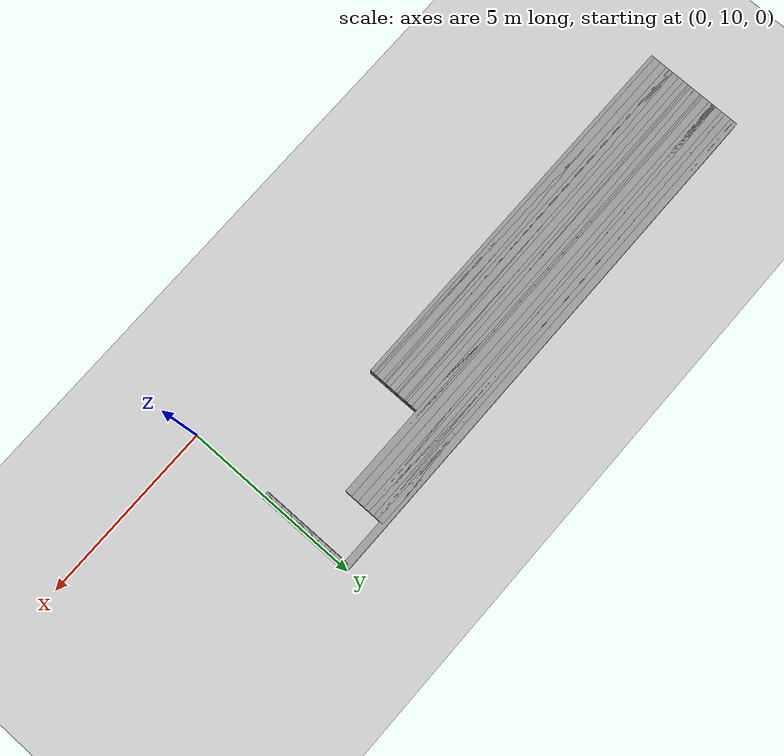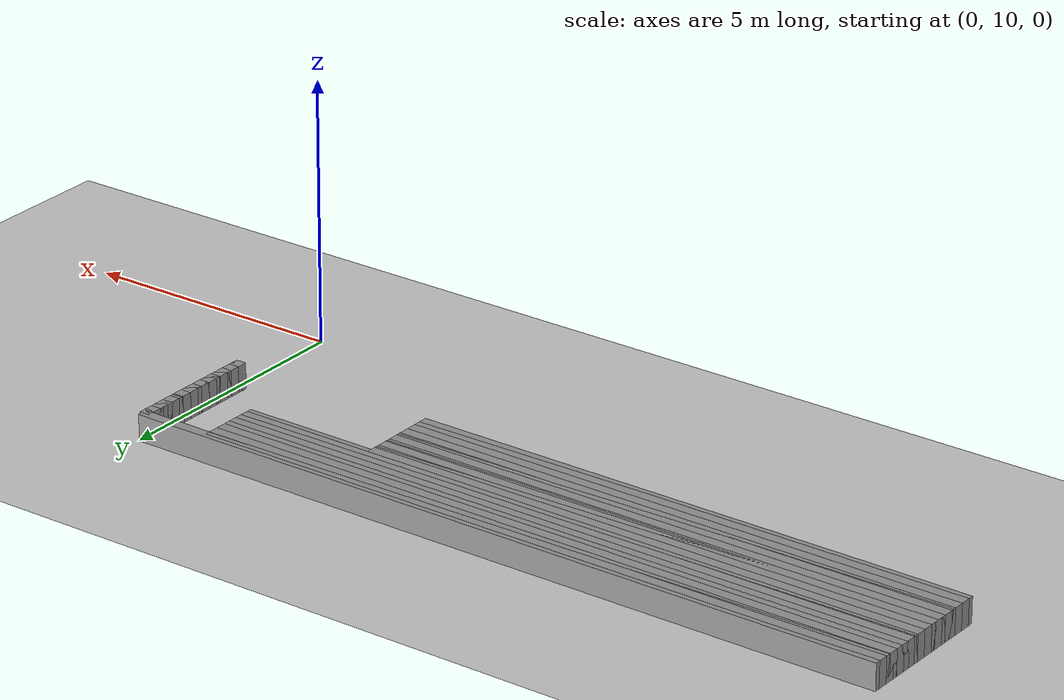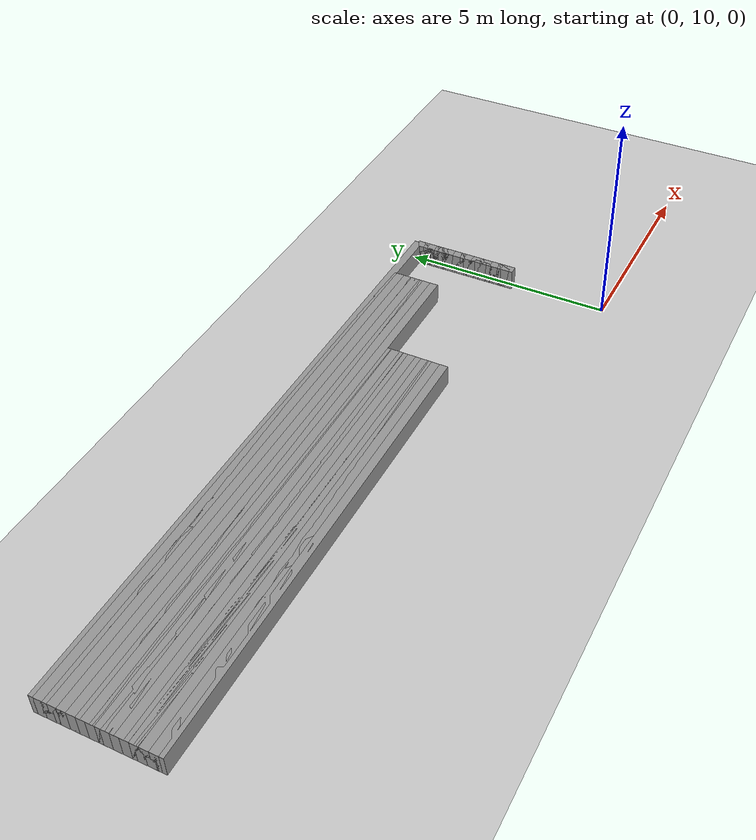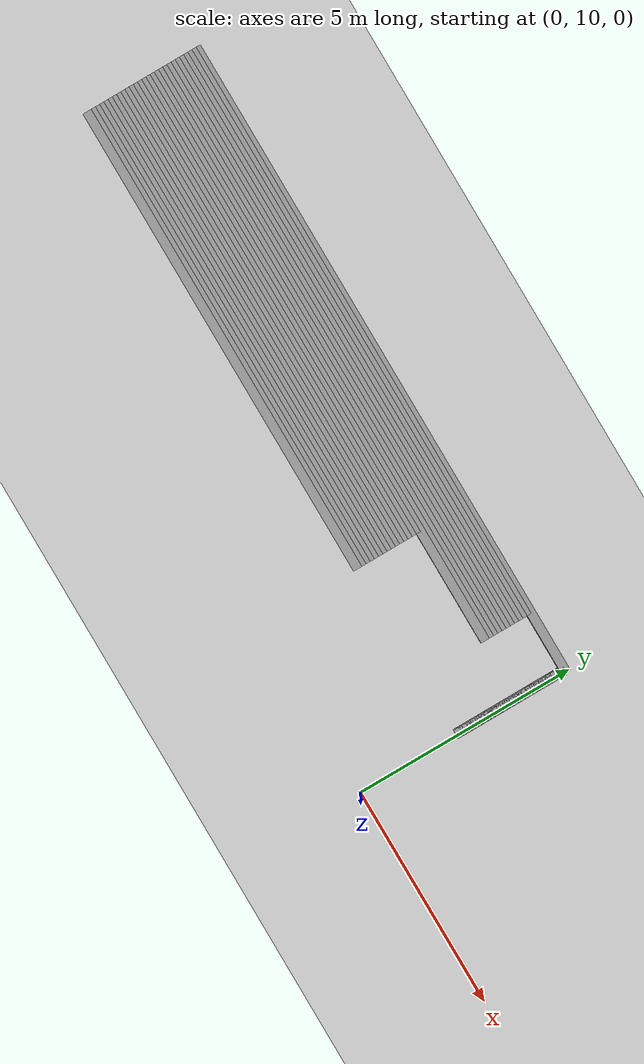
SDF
<sdf version="1.6">
 <world name="GridMap">
  <include><uri>model://sun</uri></include>
  <include><uri>model://ground_plane</uri></include>
  <model name="GridMap">
   <link name="Wall_(94.5,123.0)">
    <collision name="Wall_(94.5,123.0)_Collision">
     <geometry><box><size>10.9 0.2 0.5</size></box></geometry>
     <pose>-9.450000000000001 12.3 0.25 0 -0 0</pose>
    </collision>
    <inertial>
     <mass>0.5</mass>
     <pose>0 0.01 0 0 0 0</pose>
     <inertia><ixx>0.004</ixx><ixy>0.001</ixy><ixz>0</ixz><iyy>0.006</iyy><iyz>0</iyz><izz>0.007</izz></inertia>
    </inertial>
    <visual name="Wall_(94.5,123.0)_Visual">
     <geometry><box><size>10.9 0.2 0.5</size></box></geometry>
     <pose>-9.450000000000001 12.3 0.25 0 -0 0</pose>
     <material>
      <script><uri>file://media/materials/scripts/gazebo.material</uri><name>Gazebo/Grey</name></script>
      <ambient>1 1 1 1</ambient>
     </material>
     <meta><layer>0</layer></meta>
    </visual>
   </link>
   <link name="Wall_(0.5,124.0)">
    <collision name="Wall_(0.5,124.0)_Collision">
     <geometry><box><size>0.2 0.2 0.5</size></box></geometry>
     <pose>-0.05 12.4 0.25 0 -0 0</pose>
    </collision>
    <inertial>
     <mass>0.5</mass>
     <pose>0 0.01 0 0 0 0</pose>
     <inertia><ixx>0.004</ixx><ixy>0.001</ixy><ixz>0</ixz><iyy>0.006</iyy><iyz>0</iyz><izz>0.007</izz></inertia>
    </inertial>
    <visual name="Wall_(0.5,124.0)_Visual">
     <geometry><box><size>0.2 0.2 0.5</size></box></geometry>
     <pose>-0.05 12.4 0.25 0 -0 0</pose>
     <material>
      <script><uri>file://media/materials/scripts/gazebo.material</uri><name>Gazebo/Grey</name></script>
      <ambient>1 1 1 1</ambient>
     </material>
     <meta><layer>0</layer></meta>
    </visual>
   </link>
   <link name="Wall_(94.5,124.0)">
    <collision name="Wall_(94.5,124.0)_Collision">
     <geometry><box><size>10.9 0.2 0.5</size></box></geometry>
     <pose>-9.450000000000001 12.4 0.25 0 -0 0</pose>
    </collision>
    <inertial>
     <mass>0.5</mass>
     <pose>0 0.01 0 0 0 0</pose>
     <inertia><ixx>0.004</ixx><ixy>0.001</ixy><ixz>0</ixz><iyy>0.006</iyy><iyz>0</iyz><izz>0.007</izz></inertia>
    </inertial>
    <visual name="Wall_(94.5,124.0)_Visual">
     <geometry><box><size>10.9 0.2 0.5</size></box></geometry>
     <pose>-9.450000000000001 12.4 0.25 0 -0 0</pose>
     <material>
      <script><uri>file://media/materials/scripts/gazebo.material</uri><name>Gazebo/Grey</name></script>
      <ambient>1 1 1 1</ambient>
     </material>
     <meta><layer>0</layer></meta>
    </visual>
   </link>
   <link name="Wall_(0.5,125.0)">
    <collision name="Wall_(0.5,125.0)_Collision">
     <geometry><box><size>0.2 0.2 0.5</size></box></geometry>
     <pose>-0.05 12.5 0.25 0 -0 0</pose>
    </collision>
    <inertial>
     <mass>0.5</mass>
     <pose>0 0.01 0 0 0 0</pose>
     <inertia><ixx>0.004</ixx><ixy>0.001</ixy><ixz>0</ixz><iyy>0.006</iyy><iyz>0</iyz><izz>0.007</izz></inertia>
    </inertial>
    <visual name="Wall_(0.5,125.0)_Visual">
     <geometry><box><size>0.2 0.2 0.5</size></box></geometry>
     <pose>-0.05 12.5 0.25 0 -0 0</pose>
     <material>
      <script><uri>file://media/materials/scripts/gazebo.material</uri><name>Gazebo/Grey</name></script>
      <ambient>1 1 1 1</ambient>
     </material>
     <meta><layer>0</layer></meta>
    </visual>
   </link>
   <link name="Wall_(94.5,125.0)">
    <collision name="Wall_(94.5,125.0)_Collision">
     <geometry><box><size>10.9 0.2 0.5</size></box></geometry>
     <pose>-9.450000000000001 12.5 0.25 0 -0 0</pose>
    </collision>
    <inertial>
     <mass>0.5</mass>
     <pose>0 0.01 0 0 0 0</pose>
     <inertia><ixx>0.004</ixx><ixy>0.001</ixy><ixz>0</ixz><iyy>0.006</iyy><iyz>0</iyz><izz>0.007</izz></inertia>
    </inertial>
    <visual name="Wall_(94.5,125.0)_Visual">
     <geometry><box><size>10.9 0.2 0.5</size></box></geometry>
     <pose>-9.450000000000001 12.5 0.25 0 -0 0</pose>
     <material>
      <script><uri>file://media/materials/scripts/gazebo.material</uri><name>Gazebo/Grey</name></script>
      <ambient>1 1 1 1</ambient>
     </material>
     <meta><layer>0</layer></meta>
    </visual>
   </link>
   <link name="Wall_(0.5,126.0)">
    <collision name="Wall_(0.5,126.0)_Collision">
     <geometry><box><size>0.2 0.2 0.5</size></box></geometry>
     <pose>-0.05 12.600000000000001 0.25 0 -0 0</pose>
    </collision>
    <inertial>
     <mass>0.5</mass>
     <pose>0 0.01 0 0 0 0</pose>
     <inertia><ixx>0.004</ixx><ixy>0.001</ixy><ixz>0</ixz><iyy>0.006</iyy><iyz>0</iyz><izz>0.007</izz></inertia>
    </inertial>
    <visual name="Wall_(0.5,126.0)_Visual">
     <geometry><box><size>0.2 0.2 0.5</size></box></geometry>
     <pose>-0.05 12.600000000000001 0.25 0 -0 0</pose>
     <material>
      <script><uri>file://media/materials/scripts/gazebo.material</uri><name>Gazebo/Grey</name></script>
      <ambient>1 1 1 1</ambient>
     </material>
     <meta><layer>0</layer></meta>
    </visual>
   </link>
   <link name="Wall_(94.5,126.0)">
    <collision name="Wall_(94.5,126.0)_Collision">
     <geometry><box><size>10.9 0.2 0.5</size></box></geometry>
     <pose>-9.450000000000001 12.600000000000001 0.25 0 -0 0</pose>
    </collision>
    <inertial>
     <mass>0.5</mass>
     <pose>0 0.01 0 0 0 0</pose>
     <inertia><ixx>0.004</ixx><ixy>0.001</ixy><ixz>0</ixz><iyy>0.006</iyy><iyz>0</iyz><izz>0.007</izz></inertia>
    </inertial>
    <visual name="Wall_(94.5,126.0)_Visual">
     <geometry><box><size>10.9 0.2 0.5</size></box></geometry>
     <pose>-9.450000000000001 12.600000000000001 0.25 0 -0 0</pose>
     <material>
      <script><uri>file://media/materials/scripts/gazebo.material</uri><name>Gazebo/Grey</name></script>
      <ambient>1 1 1 1</ambient>
     </material>
     <meta><layer>0</layer></meta>
    </visual>
   </link>
   <link name="Wall_(0.5,127.0)">
    <collision name="Wall_(0.5,127.0)_Collision">
     <geometry><box><size>0.2 0.2 0.5</size></box></geometry>
     <pose>-0.05 12.700000000000001 0.25 0 -0 0</pose>
    </collision>
    <inertial>
     <mass>0.5</mass>
     <pose>0 0.01 0 0 0 0</pose>
     <inertia><ixx>0.004</ixx><ixy>0.001</ixy><ixz>0</ixz><iyy>0.006</iyy><iyz>0</iyz><izz>0.007</izz></inertia>
    </inertial>
    <visual name="Wall_(0.5,127.0)_Visual">
     <geometry><box><size>0.2 0.2 0.5</size></box></geometry>
     <pose>-0.05 12.700000000000001 0.25 0 -0 0</pose>
     <material>
      <script><uri>file://media/materials/scripts/gazebo.material</uri><name>Gazebo/Grey</name></script>
      <ambient>1 1 1 1</ambient>
     </material>
     <meta><layer>0</layer></meta>
    </visual>
   </link>
   <link name="Wall_(94.5,127.0)">
    <collision name="Wall_(94.5,127.0)_Collision">
     <geometry><box><size>10.9 0.2 0.5</size></box></geometry>
     <pose>-9.450000000000001 12.700000000000001 0.25 0 -0 0</pose>
    </collision>
    <inertial>
     <mass>0.5</mass>
     <pose>0 0.01 0 0 0 0</pose>
     <inertia><ixx>0.004</ixx><ixy>0.001</ixy><ixz>0</ixz><iyy>0.006</iyy><iyz>0</iyz><izz>0.007</izz></inertia>
    </inertial>
    <visual name="Wall_(94.5,127.0)_Visual">
     <geometry><box><size>10.9 0.2 0.5</size></box></geometry>
     <pose>-9.450000000000001 12.700000000000001 0.25 0 -0 0</pose>
     <material>
      <script><uri>file://media/materials/scripts/gazebo.material</uri><name>Gazebo/Grey</name></script>
      <ambient>1 1 1 1</ambient>
     </material>
     <meta><layer>0</layer></meta>
    </visual>
   </link>
   <link name="Wall_(0.5,128.0)">
    <collision name="Wall_(0.5,128.0)_Collision">
     <geometry><box><size>0.2 0.2 0.5</size></box></geometry>
     <pose>-0.05 12.8 0.25 0 -0 0</pose>
    </collision>
    <inertial>
     <mass>0.5</mass>
     <pose>0 0.01 0 0 0 0</pose>
     <inertia><ixx>0.004</ixx><ixy>0.001</ixy><ixz>0</ixz><iyy>0.006</iyy><iyz>0</iyz><izz>0.007</izz></inertia>
    </inertial>
    <visual name="Wall_(0.5,128.0)_Visual">
     <geometry><box><size>0.2 0.2 0.5</size></box></geometry>
     <pose>-0.05 12.8 0.25 0 -0 0</pose>
     <material>
      <script><uri>file://media/materials/scripts/gazebo.material</uri><name>Gazebo/Grey</name></script>
      <ambient>1 1 1 1</ambient>
     </material>
     <meta><layer>0</layer></meta>
    </visual>
   </link>
   <link name="Wall_(94.5,128.0)">
    <collision name="Wall_(94.5,128.0)_Collision">
     <geometry><box><size>10.9 0.2 0.5</size></box></geometry>
     <pose>-9.450000000000001 12.8 0.25 0 -0 0</pose>
    </collision>
    <inertial>
     <mass>0.5</mass>
     <pose>0 0.01 0 0 0 0</pose>
     <inertia><ixx>0.004</ixx><ixy>0.001</ixy><ixz>0</ixz><iyy>0.006</iyy><iyz>0</iyz><izz>0.007</izz></inertia>
    </inertial>
    <visual name="Wall_(94.5,128.0)_Visual">
     <geometry><box><size>10.9 0.2 0.5</size></box></geometry>
     <pose>-9.450000000000001 12.8 0.25 0 -0 0</pose>
     <material>
      <script><uri>file://media/materials/scripts/gazebo.material</uri><name>Gazebo/Grey</name></script>
      <ambient>1 1 1 1</ambient>
     </material>
     <meta><layer>0</layer></meta>
    </visual>
   </link>
   <link name="Wall_(0.5,129.0)">
    <collision name="Wall_(0.5,129.0)_Collision">
     <geometry><box><size>0.2 0.2 0.5</size></box></geometry>
     <pose>-0.05 12.9 0.25 0 -0 0</pose>
    </collision>
    <inertial>
     <mass>0.5</mass>
     <pose>0 0.01 0 0 0 0</pose>
     <inertia><ixx>0.004</ixx><ixy>0.001</ixy><ixz>0</ixz><iyy>0.006</iyy><iyz>0</iyz><izz>0.007</izz></inertia>
    </inertial>
    <visual name="Wall_(0.5,129.0)_Visual">
     <geometry><box><size>0.2 0.2 0.5</size></box></geometry>
     <pose>-0.05 12.9 0.25 0 -0 0</pose>
     <material>
      <script><uri>file://media/materials/scripts/gazebo.material</uri><name>Gazebo/Grey</name></script>
      <ambient>1 1 1 1</ambient>
     </material>
     <meta><layer>0</layer></meta>
    </visual>
   </link>
   <link name="Wall_(94.5,129.0)">
    <collision name="Wall_(94.5,129.0)_Collision">
     <geometry><box><size>10.9 0.2 0.5</size></box></geometry>
     <pose>-9.450000000000001 12.9 0.25 0 -0 0</pose>
    </collision>
    <inertial>
     <mass>0.5</mass>
     <pose>0 0.01 0 0 0 0</pose>
     <inertia><ixx>0.004</ixx><ixy>0.001</ixy><ixz>0</ixz><iyy>0.006</iyy><iyz>0</iyz><izz>0.007</izz></inertia>
    </inertial>
    <visual name="Wall_(94.5,129.0)_Visual">
     <geometry><box><size>10.9 0.2 0.5</size></box></geometry>
     <pose>-9.450000000000001 12.9 0.25 0 -0 0</pose>
     <material>
      <script><uri>file://media/materials/scripts/gazebo.material</uri><name>Gazebo/Grey</name></script>
      <ambient>1 1 1 1</ambient>
     </material>
     <meta><layer>0</layer></meta>
    </visual>
   </link>
   <link name="Wall_(0.5,130.0)">
    <collision name="Wall_(0.5,130.0)_Collision">
     <geometry><box><size>0.2 0.2 0.5</size></box></geometry>
     <pose>-0.05 13.0 0.25 0 -0 0</pose>
    </collision>
    <inertial>
     <mass>0.5</mass>
     <pose>0 0.01 0 0 0 0</pose>
     <inertia><ixx>0.004</ixx><ixy>0.001</ixy><ixz>0</ixz><iyy>0.006</iyy><iyz>0</iyz><izz>0.007</izz></inertia>
    </inertial>
    <visual name="Wall_(0.5,130.0)_Visual">
     <geometry><box><size>0.2 0.2 0.5</size></box></geometry>
     <pose>-0.05 13.0 0.25 0 -0 0</pose>
     <material>
      <script><uri>file://media/materials/scripts/gazebo.material</uri><name>Gazebo/Grey</name></script>
      <ambient>1 1 1 1</ambient>
     </material>
     <meta><layer>0</layer></meta>
    </visual>
   </link>
   <link name="Wall_(94.5,130.0)">
    <collision name="Wall_(94.5,130.0)_Collision">
     <geometry><box><size>10.9 0.2 0.5</size></box></geometry>
     <pose>-9.450000000000001 13.0 0.25 0 -0 0</pose>
    </collision>
    <inertial>
     <mass>0.5</mass>
     <pose>0 0.01 0 0 0 0</pose>
     <inertia><ixx>0.004</ixx><ixy>0.001</ixy><ixz>0</ixz><iyy>0.006</iyy><iyz>0</iyz><izz>0.007</izz></inertia>
    </inertial>
    <visual name="Wall_(94.5,130.0)_Visual">
     <geometry><box><size>10.9 0.2 0.5</size></box></geometry>
     <pose>-9.450000000000001 13.0 0.25 0 -0 0</pose>
     <material>
      <script><uri>file://media/materials/scripts/gazebo.material</uri><name>Gazebo/Grey</name></script>
      <ambient>1 1 1 1</ambient>
     </material>
     <meta><layer>0</layer></meta>
    </visual>
   </link>
   <link name="Wall_(0.5,131.0)">
    <collision name="Wall_(0.5,131.0)_Collision">
     <geometry><box><size>0.2 0.2 0.5</size></box></geometry>
     <pose>-0.05 13.100000000000001 0.25 0 -0 0</pose>
    </collision>
    <inertial>
     <mass>0.5</mass>
     <pose>0 0.01 0 0 0 0</pose>
     <inertia><ixx>0.004</ixx><ixy>0.001</ixy><ixz>0</ixz><iyy>0.006</iyy><iyz>0</iyz><izz>0.007</izz></inertia>
    </inertial>
    <visual name="Wall_(0.5,131.0)_Visual">
     <geometry><box><size>0.2 0.2 0.5</size></box></geometry>
     <pose>-0.05 13.100000000000001 0.25 0 -0 0</pose>
     <material>
      <script><uri>file://media/materials/scripts/gazebo.material</uri><name>Gazebo/Grey</name></script>
      <ambient>1 1 1 1</ambient>
     </material>
     <meta><layer>0</layer></meta>
    </visual>
   </link>
   <link name="Wall_(94.5,131.0)">
    <collision name="Wall_(94.5,131.0)_Collision">
     <geometry><box><size>10.9 0.2 0.5</size></box></geometry>
     <pose>-9.450000000000001 13.100000000000001 0.25 0 -0 0</pose>
    </collision>
    <inertial>
     <mass>0.5</mass>
     <pose>0 0.01 0 0 0 0</pose>
     <inertia><ixx>0.004</ixx><ixy>0.001</ixy><ixz>0</ixz><iyy>0.006</iyy><iyz>0</iyz><izz>0.007</izz></inertia>
    </inertial>
    <visual name="Wall_(94.5,131.0)_Visual">
     <geometry><box><size>10.9 0.2 0.5</size></box></geometry>
     <pose>-9.450000000000001 13.100000000000001 0.25 0 -0 0</pose>
     <material>
      <script><uri>file://media/materials/scripts/gazebo.material</uri><name>Gazebo/Grey</name></script>
      <ambient>1 1 1 1</ambient>
     </material>
     <meta><layer>0</layer></meta>
    </visual>
   </link>
   <link name="Wall_(0.5,132.0)">
    <collision name="Wall_(0.5,132.0)_Collision">
     <geometry><box><size>0.2 0.2 0.5</size></box></geometry>
     <pose>-0.05 13.200000000000001 0.25 0 -0 0</pose>
    </collision>
    <inertial>
     <mass>0.5</mass>
     <pose>0 0.01 0 0 0 0</pose>
     <inertia><ixx>0.004</ixx><ixy>0.001</ixy><ixz>0</ixz><iyy>0.006</iyy><iyz>0</iyz><izz>0.007</izz></inertia>
    </inertial>
    <visual name="Wall_(0.5,132.0)_Visual">
     <geometry><box><size>0.2 0.2 0.5</size></box></geometry>
     <pose>-0.05 13.200000000000001 0.25 0 -0 0</pose>
     <material>
      <script><uri>file://media/materials/scripts/gazebo.material</uri><name>Gazebo/Grey</name></script>
      <ambient>1 1 1 1</ambient>
     </material>
     <meta><layer>0</layer></meta>
    </visual>
   </link>
   <link name="Wall_(94.5,132.0)">
    <collision name="Wall_(94.5,132.0)_Collision">
     <geometry><box><size>10.9 0.2 0.5</size></box></geometry>
     <pose>-9.450000000000001 13.200000000000001 0.25 0 -0 0</pose>
    </collision>
    <inertial>
     <mass>0.5</mass>
     <pose>0 0.01 0 0 0 0</pose>
     <inertia><ixx>0.004</ixx><ixy>0.001</ixy><ixz>0</ixz><iyy>0.006</iyy><iyz>0</iyz><izz>0.007</izz></inertia>
    </inertial>
    <visual name="Wall_(94.5,132.0)_Visual">
     <geometry><box><size>10.9 0.2 0.5</size></box></geometry>
     <pose>-9.450000000000001 13.200000000000001 0.25 0 -0 0</pose>
     <material>
      <script><uri>file://media/materials/scripts/gazebo.material</uri><name>Gazebo/Grey</name></script>
      <ambient>1 1 1 1</ambient>
     </material>
     <meta><layer>0</layer></meta>
    </visual>
   </link>
   <link name="Wall_(0.5,133.0)">
    <collision name="Wall_(0.5,133.0)_Collision">
     <geometry><box><size>0.2 0.2 0.5</size></box></geometry>
     <pose>-0.05 13.3 0.25 0 -0 0</pose>
    </collision>
    <inertial>
     <mass>0.5</mass>
     <pose>0 0.01 0 0 0 0</pose>
     <inertia><ixx>0.004</ixx><ixy>0.001</ixy><ixz>0</ixz><iyy>0.006</iyy><iyz>0</iyz><izz>0.007</izz></inertia>
    </inertial>
    <visual name="Wall_(0.5,133.0)_Visual">
     <geometry><box><size>0.2 0.2 0.5</size></box></geometry>
     <pose>-0.05 13.3 0.25 0 -0 0</pose>
     <material>
      <script><uri>file://media/materials/scripts/gazebo.material</uri><name>Gazebo/Grey</name></script>
      <ambient>1 1 1 1</ambient>
     </material>
     <meta><layer>0</layer></meta>
    </visual>
   </link>
   <link name="Wall_(94.5,133.0)">
    <collision name="Wall_(94.5,133.0)_Collision">
     <geometry><box><size>10.9 0.2 0.5</size></box></geometry>
     <pose>-9.450000000000001 13.3 0.25 0 -0 0</pose>
    </collision>
    <inertial>
     <mass>0.5</mass>
     <pose>0 0.01 0 0 0 0</pose>
     <inertia><ixx>0.004</ixx><ixy>0.001</ixy><ixz>0</ixz><iyy>0.006</iyy><iyz>0</iyz><izz>0.007</izz></inertia>
    </inertial>
    <visual name="Wall_(94.5,133.0)_Visual">
     <geometry><box><size>10.9 0.2 0.5</size></box></geometry>
     <pose>-9.450000000000001 13.3 0.25 0 -0 0</pose>
     <material>
      <script><uri>file://media/materials/scripts/gazebo.material</uri><name>Gazebo/Grey</name></script>
      <ambient>1 1 1 1</ambient>
     </material>
     <meta><layer>0</layer></meta>
    </visual>
   </link>
   <link name="Wall_(0.5,134.0)">
    <collision name="Wall_(0.5,134.0)_Collision">
     <geometry><box><size>0.2 0.2 0.5</size></box></geometry>
     <pose>-0.05 13.4 0.25 0 -0 0</pose>
    </collision>
    <inertial>
     <mass>0.5</mass>
     <pose>0 0.01 0 0 0 0</pose>
     <inertia><ixx>0.004</ixx><ixy>0.001</ixy><ixz>0</ixz><iyy>0.006</iyy><iyz>0</iyz><izz>0.007</izz></inertia>
    </inertial>
    <visual name="Wall_(0.5,134.0)_Visual">
     <geometry><box><size>0.2 0.2 0.5</size></box></geometry>
     <pose>-0.05 13.4 0.25 0 -0 0</pose>
     <material>
      <script><uri>file://media/materials/scripts/gazebo.material</uri><name>Gazebo/Grey</name></script>
      <ambient>1 1 1 1</ambient>
     </material>
     <meta><layer>0</layer></meta>
    </visual>
   </link>
   <link name="Wall_(94.5,134.0)">
    <collision name="Wall_(94.5,134.0)_Collision">
     <geometry><box><size>10.9 0.2 0.5</size></box></geometry>
     <pose>-9.450000000000001 13.4 0.25 0 -0 0</pose>
    </collision>
    <inertial>
     <mass>0.5</mass>
     <pose>0 0.01 0 0 0 0</pose>
     <inertia><ixx>0.004</ixx><ixy>0.001</ixy><ixz>0</ixz><iyy>0.006</iyy><iyz>0</iyz><izz>0.007</izz></inertia>
    </inertial>
    <visual name="Wall_(94.5,134.0)_Visual">
     <geometry><box><size>10.9 0.2 0.5</size></box></geometry>
     <pose>-9.450000000000001 13.4 0.25 0 -0 0</pose>
     <material>
      <script><uri>file://media/materials/scripts/gazebo.material</uri><name>Gazebo/Grey</name></script>
      <ambient>1 1 1 1</ambient>
     </material>
     <meta><layer>0</layer></meta>
    </visual>
   </link>
   <link name="Wall_(0.5,135.0)">
    <collision name="Wall_(0.5,135.0)_Collision">
     <geometry><box><size>0.2 0.2 0.5</size></box></geometry>
     <pose>-0.05 13.5 0.25 0 -0 0</pose>
    </collision>
    <inertial>
     <mass>0.5</mass>
     <pose>0 0.01 0 0 0 0</pose>
     <inertia><ixx>0.004</ixx><ixy>0.001</ixy><ixz>0</ixz><iyy>0.006</iyy><iyz>0</iyz><izz>0.007</izz></inertia>
    </inertial>
    <visual name="Wall_(0.5,135.0)_Visual">
     <geometry><box><size>0.2 0.2 0.5</size></box></geometry>
     <pose>-0.05 13.5 0.25 0 -0 0</pose>
     <material>
      <script><uri>file://media/materials/scripts/gazebo.material</uri><name>Gazebo/Grey</name></script>
      <ambient>1 1 1 1</ambient>
     </material>
     <meta><layer>0</layer></meta>
    </visual>
   </link>
   <link name="Wall_(94.5,135.0)">
    <collision name="Wall_(94.5,135.0)_Collision">
     <geometry><box><size>10.9 0.2 0.5</size></box></geometry>
     <pose>-9.450000000000001 13.5 0.25 0 -0 0</pose>
    </collision>
    <inertial>
     <mass>0.5</mass>
     <pose>0 0.01 0 0 0 0</pose>
     <inertia><ixx>0.004</ixx><ixy>0.001</ixy><ixz>0</ixz><iyy>0.006</iyy><iyz>0</iyz><izz>0.007</izz></inertia>
    </inertial>
    <visual name="Wall_(94.5,135.0)_Visual">
     <geometry><box><size>10.9 0.2 0.5</size></box></geometry>
     <pose>-9.450000000000001 13.5 0.25 0 -0 0</pose>
     <material>
      <script><uri>file://media/materials/scripts/gazebo.material</uri><name>Gazebo/Grey</name></script>
      <ambient>1 1 1 1</ambient>
     </material>
     <meta><layer>0</layer></meta>
    </visual>
   </link>
   <link name="Wall_(0.5,136.0)">
    <collision name="Wall_(0.5,136.0)_Collision">
     <geometry><box><size>0.2 0.2 0.5</size></box></geometry>
     <pose>-0.05 13.600000000000001 0.25 0 -0 0</pose>
    </collision>
    <inertial>
     <mass>0.5</mass>
     <pose>0 0.01 0 0 0 0</pose>
     <inertia><ixx>0.004</ixx><ixy>0.001</ixy><ixz>0</ixz><iyy>0.006</iyy><iyz>0</iyz><izz>0.007</izz></inertia>
    </inertial>
    <visual name="Wall_(0.5,136.0)_Visual">
     <geometry><box><size>0.2 0.2 0.5</size></box></geometry>
     <pose>-0.05 13.600000000000001 0.25 0 -0 0</pose>
     <material>
      <script><uri>file://media/materials/scripts/gazebo.material</uri><name>Gazebo/Grey</name></script>
      <ambient>1 1 1 1</ambient>
     </material>
     <meta><layer>0</layer></meta>
    </visual>
   </link>
   <link name="Wall_(94.5,136.0)">
    <collision name="Wall_(94.5,136.0)_Collision">
     <geometry><box><size>10.9 0.2 0.5</size></box></geometry>
     <pose>-9.450000000000001 13.600000000000001 0.25 0 -0 0</pose>
    </collision>
    <inertial>
     <mass>0.5</mass>
     <pose>0 0.01 0 0 0 0</pose>
     <inertia><ixx>0.004</ixx><ixy>0.001</ixy><ixz>0</ixz><iyy>0.006</iyy><iyz>0</iyz><izz>0.007</izz></inertia>
    </inertial>
    <visual name="Wall_(94.5,136.0)_Visual">
     <geometry><box><size>10.9 0.2 0.5</size></box></geometry>
     <pose>-9.450000000000001 13.600000000000001 0.25 0 -0 0</pose>
     <material>
      <script><uri>file://media/materials/scripts/gazebo.material</uri><name>Gazebo/Grey</name></script>
      <ambient>1 1 1 1</ambient>
     </material>
     <meta><layer>0</layer></meta>
    </visual>
   </link>
   <link name="Wall_(0.5,137.0)">
    <collision name="Wall_(0.5,137.0)_Collision">
     <geometry><box><size>0.2 0.2 0.5</size></box></geometry>
     <pose>-0.05 13.700000000000001 0.25 0 -0 0</pose>
    </collision>
    <inertial>
     <mass>0.5</mass>
     <pose>0 0.01 0 0 0 0</pose>
     <inertia><ixx>0.004</ixx><ixy>0.001</ixy><ixz>0</ixz><iyy>0.006</iyy><iyz>0</iyz><izz>0.007</izz></inertia>
    </inertial>
    <visual name="Wall_(0.5,137.0)_Visual">
     <geometry><box><size>0.2 0.2 0.5</size></box></geometry>
     <pose>-0.05 13.700000000000001 0.25 0 -0 0</pose>
     <material>
      <script><uri>file://media/materials/scripts/gazebo.material</uri><name>Gazebo/Grey</name></script>
      <ambient>1 1 1 1</ambient>
     </material>
     <meta><layer>0</layer></meta>
    </visual>
   </link>
   <link name="Wall_(94.5,137.0)">
    <collision name="Wall_(94.5,137.0)_Collision">
     <geometry><box><size>10.9 0.2 0.5</size></box></geometry>
     <pose>-9.450000000000001 13.700000000000001 0.25 0 -0 0</pose>
    </collision>
    <inertial>
     <mass>0.5</mass>
     <pose>0 0.01 0 0 0 0</pose>
     <inertia><ixx>0.004</ixx><ixy>0.001</ixy><ixz>0</ixz><iyy>0.006</iyy><iyz>0</iyz><izz>0.007</izz></inertia>
    </inertial>
    <visual name="Wall_(94.5,137.0)_Visual">
     <geometry><box><size>10.9 0.2 0.5</size></box></geometry>
     <pose>-9.450000000000001 13.700000000000001 0.25 0 -0 0</pose>
     <material>
      <script><uri>file://media/materials/scripts/gazebo.material</uri><name>Gazebo/Grey</name></script>
      <ambient>1 1 1 1</ambient>
     </material>
     <meta><layer>0</layer></meta>
    </visual>
   </link>
   <link name="Wall_(0.5,138.0)">
    <collision name="Wall_(0.5,138.0)_Collision">
     <geometry><box><size>0.2 0.2 0.5</size></box></geometry>
     <pose>-0.05 13.8 0.25 0 -0 0</pose>
    </collision>
    <inertial>
     <mass>0.5</mass>
     <pose>0 0.01 0 0 0 0</pose>
     <inertia><ixx>0.004</ixx><ixy>0.001</ixy><ixz>0</ixz><iyy>0.006</iyy><iyz>0</iyz><izz>0.007</izz></inertia>
    </inertial>
    <visual name="Wall_(0.5,138.0)_Visual">
     <geometry><box><size>0.2 0.2 0.5</size></box></geometry>
     <pose>-0.05 13.8 0.25 0 -0 0</pose>
     <material>
      <script><uri>file://media/materials/scripts/gazebo.material</uri><name>Gazebo/Grey</name></script>
      <ambient>1 1 1 1</ambient>
     </material>
     <meta><layer>0</layer></meta>
    </visual>
   </link>
   <link name="Wall_(81.5,138.0)">
    <collision name="Wall_(81.5,138.0)_Collision">
     <geometry><box><size>13.5 0.2 0.5</size></box></geometry>
     <pose>-8.15 13.8 0.25 0 -0 0</pose>
    </collision>
    <inertial>
     <mass>0.5</mass>
     <pose>0 0.01 0 0 0 0</pose>
     <inertia><ixx>0.004</ixx><ixy>0.001</ixy><ixz>0</ixz><iyy>0.006</iyy><iyz>0</iyz><izz>0.007</izz></inertia>
    </inertial>
    <visual name="Wall_(81.5,138.0)_Visual">
     <geometry><box><size>13.5 0.2 0.5</size></box></geometry>
     <pose>-8.15 13.8 0.25 0 -0 0</pose>
     <material>
      <script><uri>file://media/materials/scripts/gazebo.material</uri><name>Gazebo/Grey</name></script>
      <ambient>1 1 1 1</ambient>
     </material>
     <meta><layer>0</layer></meta>
    </visual>
   </link>
   <link name="Wall_(0.5,139.0)">
    <collision name="Wall_(0.5,139.0)_Collision">
     <geometry><box><size>0.2 0.2 0.5</size></box></geometry>
     <pose>-0.05 13.9 0.25 0 -0 0</pose>
    </collision>
    <inertial>
     <mass>0.5</mass>
     <pose>0 0.01 0 0 0 0</pose>
     <inertia><ixx>0.004</ixx><ixy>0.001</ixy><ixz>0</ixz><iyy>0.006</iyy><iyz>0</iyz><izz>0.007</izz></inertia>
    </inertial>
    <visual name="Wall_(0.5,139.0)_Visual">
     <geometry><box><size>0.2 0.2 0.5</size></box></geometry>
     <pose>-0.05 13.9 0.25 0 -0 0</pose>
     <material>
      <script><uri>file://media/materials/scripts/gazebo.material</uri><name>Gazebo/Grey</name></script>
      <ambient>1 1 1 1</ambient>
     </material>
     <meta><layer>0</layer></meta>
    </visual>
   </link>
   <link name="Wall_(81.5,139.0)">
    <collision name="Wall_(81.5,139.0)_Collision">
     <geometry><box><size>13.5 0.2 0.5</size></box></geometry>
     <pose>-8.15 13.9 0.25 0 -0 0</pose>
    </collision>
    <inertial>
     <mass>0.5</mass>
     <pose>0 0.01 0 0 0 0</pose>
     <inertia><ixx>0.004</ixx><ixy>0.001</ixy><ixz>0</ixz><iyy>0.006</iyy><iyz>0</iyz><izz>0.007</izz></inertia>
    </inertial>
    <visual name="Wall_(81.5,139.0)_Visual">
     <geometry><box><size>13.5 0.2 0.5</size></box></geometry>
     <pose>-8.15 13.9 0.25 0 -0 0</pose>
     <material>
      <script><uri>file://media/materials/scripts/gazebo.material</uri><name>Gazebo/Grey</name></script>
      <ambient>1 1 1 1</ambient>
     </material>
     <meta><layer>0</layer></meta>
    </visual>
   </link>
   <link name="Wall_(0.5,140.0)">
    <collision name="Wall_(0.5,140.0)_Collision">
     <geometry><box><size>0.2 0.2 0.5</size></box></geometry>
     <pose>-0.05 14.0 0.25 0 -0 0</pose>
    </collision>
    <inertial>
     <mass>0.5</mass>
     <pose>0 0.01 0 0 0 0</pose>
     <inertia><ixx>0.004</ixx><ixy>0.001</ixy><ixz>0</ixz><iyy>0.006</iyy><iyz>0</iyz><izz>0.007</izz></inertia>
    </inertial>
    <visual name="Wall_(0.5,140.0)_Visual">
     <geometry><box><size>0.2 0.2 0.5</size></box></geometry>
     <pose>-0.05 14.0 0.25 0 -0 0</pose>
     <material>
      <script><uri>file://media/materials/scripts/gazebo.material</uri><name>Gazebo/Grey</name></script>
      <ambient>1 1 1 1</ambient>
     </material>
     <meta><layer>0</layer></meta>
    </visual>
   </link>
   <link name="Wall_(81.5,140.0)">
    <collision name="Wall_(81.5,140.0)_Collision">
     <geometry><box><size>13.5 0.2 0.5</size></box></geometry>
     <pose>-8.15 14.0 0.25 0 -0 0</pose>
    </collision>
    <inertial>
     <mass>0.5</mass>
     <pose>0 0.01 0 0 0 0</pose>
     <inertia><ixx>0.004</ixx><ixy>0.001</ixy><ixz>0</ixz><iyy>0.006</iyy><iyz>0</iyz><izz>0.007</izz></inertia>
    </inertial>
    <visual name="Wall_(81.5,140.0)_Visual">
     <geometry><box><size>13.5 0.2 0.5</size></box></geometry>
     <pose>-8.15 14.0 0.25 0 -0 0</pose>
     <material>
      <script><uri>file://media/materials/scripts/gazebo.material</uri><name>Gazebo/Grey</name></script>
      <ambient>1 1 1 1</ambient>
     </material>
     <meta><layer>0</layer></meta>
    </visual>
   </link>
   <link name="Wall_(0.5,141.0)">
    <collision name="Wall_(0.5,141.0)_Collision">
     <geometry><box><size>0.2 0.2 0.5</size></box></geometry>
     <pose>-0.05 14.100000000000001 0.25 0 -0 0</pose>
    </collision>
    <inertial>
     <mass>0.5</mass>
     <pose>0 0.01 0 0 0 0</pose>
     <inertia><ixx>0.004</ixx><ixy>0.001</ixy><ixz>0</ixz><iyy>0.006</iyy><iyz>0</iyz><izz>0.007</izz></inertia>
    </inertial>
    <visual name="Wall_(0.5,141.0)_Visual">
     <geometry><box><size>0.2 0.2 0.5</size></box></geometry>
     <pose>-0.05 14.100000000000001 0.25 0 -0 0</pose>
     <material>
      <script><uri>file://media/materials/scripts/gazebo.material</uri><name>Gazebo/Grey</name></script>
      <ambient>1 1 1 1</ambient>
     </material>
     <meta><layer>0</layer></meta>
    </visual>
   </link>
   <link name="Wall_(81.5,141.0)">
    <collision name="Wall_(81.5,141.0)_Collision">
     <geometry><box><size>13.5 0.2 0.5</size></box></geometry>
     <pose>-8.15 14.100000000000001 0.25 0 -0 0</pose>
    </collision>
    <inertial>
     <mass>0.5</mass>
     <pose>0 0.01 0 0 0 0</pose>
     <inertia><ixx>0.004</ixx><ixy>0.001</ixy><ixz>0</ixz><iyy>0.006</iyy><iyz>0</iyz><izz>0.007</izz></inertia>
    </inertial>
    <visual name="Wall_(81.5,141.0)_Visual">
     <geometry><box><size>13.5 0.2 0.5</size></box></geometry>
     <pose>-8.15 14.100000000000001 0.25 0 -0 0</pose>
     <material>
      <script><uri>file://media/materials/scripts/gazebo.material</uri><name>Gazebo/Grey</name></script>
      <ambient>1 1 1 1</ambient>
     </material>
     <meta><layer>0</layer></meta>
    </visual>
   </link>
   <link name="Wall_(0.5,142.0)">
    <collision name="Wall_(0.5,142.0)_Collision">
     <geometry><box><size>0.2 0.2 0.5</size></box></geometry>
     <pose>-0.05 14.200000000000001 0.25 0 -0 0</pose>
    </collision>
    <inertial>
     <mass>0.5</mass>
     <pose>0 0.01 0 0 0 0</pose>
     <inertia><ixx>0.004</ixx><ixy>0.001</ixy><ixz>0</ixz><iyy>0.006</iyy><iyz>0</iyz><izz>0.007</izz></inertia>
    </inertial>
    <visual name="Wall_(0.5,142.0)_Visual">
     <geometry><box><size>0.2 0.2 0.5</size></box></geometry>
     <pose>-0.05 14.200000000000001 0.25 0 -0 0</pose>
     <material>
      <script><uri>file://media/materials/scripts/gazebo.material</uri><name>Gazebo/Grey</name></script>
      <ambient>1 1 1 1</ambient>
     </material>
     <meta><layer>0</layer></meta>
    </visual>
   </link>
   <link name="Wall_(81.5,142.0)">
    <collision name="Wall_(81.5,142.0)_Collision">
     <geometry><box><size>13.5 0.2 0.5</size></box></geometry>
     <pose>-8.15 14.200000000000001 0.25 0 -0 0</pose>
    </collision>
    <inertial>
     <mass>0.5</mass>
     <pose>0 0.01 0 0 0 0</pose>
     <inertia><ixx>0.004</ixx><ixy>0.001</ixy><ixz>0</ixz><iyy>0.006</iyy><iyz>0</iyz><izz>0.007</izz></inertia>
    </inertial>
    <visual name="Wall_(81.5,142.0)_Visual">
     <geometry><box><size>13.5 0.2 0.5</size></box></geometry>
     <pose>-8.15 14.200000000000001 0.25 0 -0 0</pose>
     <material>
      <script><uri>file://media/materials/scripts/gazebo.material</uri><name>Gazebo/Grey</name></script>
      <ambient>1 1 1 1</ambient>
     </material>
     <meta><layer>0</layer></meta>
    </visual>
   </link>
   <link name="Wall_(0.5,143.0)">
    <collision name="Wall_(0.5,143.0)_Collision">
     <geometry><box><size>0.2 0.2 0.5</size></box></geometry>
     <pose>-0.05 14.3 0.25 0 -0 0</pose>
    </collision>
    <inertial>
     <mass>0.5</mass>
     <pose>0 0.01 0 0 0 0</pose>
     <inertia><ixx>0.004</ixx><ixy>0.001</ixy><ixz>0</ixz><iyy>0.006</iyy><iyz>0</iyz><izz>0.007</izz></inertia>
    </inertial>
    <visual name="Wall_(0.5,143.0)_Visual">
     <geometry><box><size>0.2 0.2 0.5</size></box></geometry>
     <pose>-0.05 14.3 0.25 0 -0 0</pose>
     <material>
      <script><uri>file://media/materials/scripts/gazebo.material</uri><name>Gazebo/Grey</name></script>
      <ambient>1 1 1 1</ambient>
     </material>
     <meta><layer>0</layer></meta>
    </visual>
   </link>
   <link name="Wall_(81.5,143.0)">
    <collision name="Wall_(81.5,143.0)_Collision">
     <geometry><box><size>13.5 0.2 0.5</size></box></geometry>
     <pose>-8.15 14.3 0.25 0 -0 0</pose>
    </collision>
    <inertial>
     <mass>0.5</mass>
     <pose>0 0.01 0 0 0 0</pose>
     <inertia><ixx>0.004</ixx><ixy>0.001</ixy><ixz>0</ixz><iyy>0.006</iyy><iyz>0</iyz><izz>0.007</izz></inertia>
    </inertial>
    <visual name="Wall_(81.5,143.0)_Visual">
     <geometry><box><size>13.5 0.2 0.5</size></box></geometry>
     <pose>-8.15 14.3 0.25 0 -0 0</pose>
     <material>
      <script><uri>file://media/materials/scripts/gazebo.material</uri><name>Gazebo/Grey</name></script>
      <ambient>1 1 1 1</ambient>
     </material>
     <meta><layer>0</layer></meta>
    </visual>
   </link>
   <link name="Wall_(0.5,144.0)">
    <collision name="Wall_(0.5,144.0)_Collision">
     <geometry><box><size>0.2 0.2 0.5</size></box></geometry>
     <pose>-0.05 14.4 0.25 0 -0 0</pose>
    </collision>
    <inertial>
     <mass>0.5</mass>
     <pose>0 0.01 0 0 0 0</pose>
     <inertia><ixx>0.004</ixx><ixy>0.001</ixy><ixz>0</ixz><iyy>0.006</iyy><iyz>0</iyz><izz>0.007</izz></inertia>
    </inertial>
    <visual name="Wall_(0.5,144.0)_Visual">
     <geometry><box><size>0.2 0.2 0.5</size></box></geometry>
     <pose>-0.05 14.4 0.25 0 -0 0</pose>
     <material>
      <script><uri>file://media/materials/scripts/gazebo.material</uri><name>Gazebo/Grey</name></script>
      <ambient>1 1 1 1</ambient>
     </material>
     <meta><layer>0</layer></meta>
    </visual>
   </link>
   <link name="Wall_(81.5,144.0)">
    <collision name="Wall_(81.5,144.0)_Collision">
     <geometry><box><size>13.5 0.2 0.5</size></box></geometry>
     <pose>-8.15 14.4 0.25 0 -0 0</pose>
    </collision>
    <inertial>
     <mass>0.5</mass>
     <pose>0 0.01 0 0 0 0</pose>
     <inertia><ixx>0.004</ixx><ixy>0.001</ixy><ixz>0</ixz><iyy>0.006</iyy><iyz>0</iyz><izz>0.007</izz></inertia>
    </inertial>
    <visual name="Wall_(81.5,144.0)_Visual">
     <geometry><box><size>13.5 0.2 0.5</size></box></geometry>
     <pose>-8.15 14.4 0.25 0 -0 0</pose>
     <material>
      <script><uri>file://media/materials/scripts/gazebo.material</uri><name>Gazebo/Grey</name></script>
      <ambient>1 1 1 1</ambient>
     </material>
     <meta><layer>0</layer></meta>
    </visual>
   </link>
   <link name="Wall_(0.5,145.0)">
    <collision name="Wall_(0.5,145.0)_Collision">
     <geometry><box><size>0.2 0.2 0.5</size></box></geometry>
     <pose>-0.05 14.5 0.25 0 -0 0</pose>
    </collision>
    <inertial>
     <mass>0.5</mass>
     <pose>0 0.01 0 0 0 0</pose>
     <inertia><ixx>0.004</ixx><ixy>0.001</ixy><ixz>0</ixz><iyy>0.006</iyy><iyz>0</iyz><izz>0.007</izz></inertia>
    </inertial>
    <visual name="Wall_(0.5,145.0)_Visual">
     <geometry><box><size>0.2 0.2 0.5</size></box></geometry>
     <pose>-0.05 14.5 0.25 0 -0 0</pose>
     <material>
      <script><uri>file://media/materials/scripts/gazebo.material</uri><name>Gazebo/Grey</name></script>
      <ambient>1 1 1 1</ambient>
     </material>
     <meta><layer>0</layer></meta>
    </visual>
   </link>
   <link name="Wall_(81.5,145.0)">
    <collision name="Wall_(81.5,145.0)_Collision">
     <geometry><box><size>13.5 0.2 0.5</size></box></geometry>
     <pose>-8.15 14.5 0.25 0 -0 0</pose>
    </collision>
    <inertial>
     <mass>0.5</mass>
     <pose>0 0.01 0 0 0 0</pose>
     <inertia><ixx>0.004</ixx><ixy>0.001</ixy><ixz>0</ixz><iyy>0.006</iyy><iyz>0</iyz><izz>0.007</izz></inertia>
    </inertial>
    <visual name="Wall_(81.5,145.0)_Visual">
     <geometry><box><size>13.5 0.2 0.5</size></box></geometry>
     <pose>-8.15 14.5 0.25 0 -0 0</pose>
     <material>
      <script><uri>file://media/materials/scripts/gazebo.material</uri><name>Gazebo/Grey</name></script>
      <ambient>1 1 1 1</ambient>
     </material>
     <meta><layer>0</layer></meta>
    </visual>
   </link>
   <link name="Wall_(0.5,146.0)">
    <collision name="Wall_(0.5,146.0)_Collision">
     <geometry><box><size>0.2 0.2 0.5</size></box></geometry>
     <pose>-0.05 14.600000000000001 0.25 0 -0 0</pose>
    </collision>
    <inertial>
     <mass>0.5</mass>
     <pose>0 0.01 0 0 0 0</pose>
     <inertia><ixx>0.004</ixx><ixy>0.001</ixy><ixz>0</ixz><iyy>0.006</iyy><iyz>0</iyz><izz>0.007</izz></inertia>
    </inertial>
    <visual name="Wall_(0.5,146.0)_Visual">
     <geometry><box><size>0.2 0.2 0.5</size></box></geometry>
     <pose>-0.05 14.600000000000001 0.25 0 -0 0</pose>
     <material>
      <script><uri>file://media/materials/scripts/gazebo.material</uri><name>Gazebo/Grey</name></script>
      <ambient>1 1 1 1</ambient>
     </material>
     <meta><layer>0</layer></meta>
    </visual>
   </link>
   <link name="Wall_(81.5,146.0)">
    <collision name="Wall_(81.5,146.0)_Collision">
     <geometry><box><size>13.5 0.2 0.5</size></box></geometry>
     <pose>-8.15 14.600000000000001 0.25 0 -0 0</pose>
    </collision>
    <inertial>
     <mass>0.5</mass>
     <pose>0 0.01 0 0 0 0</pose>
     <inertia><ixx>0.004</ixx><ixy>0.001</ixy><ixz>0</ixz><iyy>0.006</iyy><iyz>0</iyz><izz>0.007</izz></inertia>
    </inertial>
    <visual name="Wall_(81.5,146.0)_Visual">
     <geometry><box><size>13.5 0.2 0.5</size></box></geometry>
     <pose>-8.15 14.600000000000001 0.25 0 -0 0</pose>
     <material>
      <script><uri>file://media/materials/scripts/gazebo.material</uri><name>Gazebo/Grey</name></script>
      <ambient>1 1 1 1</ambient>
     </material>
     <meta><layer>0</layer></meta>
    </visual>
   </link>
   <link name="Wall_(0.5,147.0)">
    <collision name="Wall_(0.5,147.0)_Collision">
     <geometry><box><size>0.2 0.2 0.5</size></box></geometry>
     <pose>-0.05 14.700000000000001 0.25 0 -0 0</pose>
    </collision>
    <inertial>
     <mass>0.5</mass>
     <pose>0 0.01 0 0 0 0</pose>
     <inertia><ixx>0.004</ixx><ixy>0.001</ixy><ixz>0</ixz><iyy>0.006</iyy><iyz>0</iyz><izz>0.007</izz></inertia>
    </inertial>
    <visual name="Wall_(0.5,147.0)_Visual">
     <geometry><box><size>0.2 0.2 0.5</size></box></geometry>
     <pose>-0.05 14.700000000000001 0.25 0 -0 0</pose>
     <material>
      <script><uri>file://media/materials/scripts/gazebo.material</uri><name>Gazebo/Grey</name></script>
      <ambient>1 1 1 1</ambient>
     </material>
     <meta><layer>0</layer></meta>
    </visual>
   </link>
   <link name="Wall_(81.5,147.0)">
    <collision name="Wall_(81.5,147.0)_Collision">
     <geometry><box><size>13.5 0.2 0.5</size></box></geometry>
     <pose>-8.15 14.700000000000001 0.25 0 -0 0</pose>
    </collision>
    <inertial>
     <mass>0.5</mass>
     <pose>0 0.01 0 0 0 0</pose>
     <inertia><ixx>0.004</ixx><ixy>0.001</ixy><ixz>0</ixz><iyy>0.006</iyy><iyz>0</iyz><izz>0.007</izz></inertia>
    </inertial>
    <visual name="Wall_(81.5,147.0)_Visual">
     <geometry><box><size>13.5 0.2 0.5</size></box></geometry>
     <pose>-8.15 14.700000000000001 0.25 0 -0 0</pose>
     <material>
      <script><uri>file://media/materials/scripts/gazebo.material</uri><name>Gazebo/Grey</name></script>
      <ambient>1 1 1 1</ambient>
     </material>
     <meta><layer>0</layer></meta>
    </visual>
   </link>
   <link name="Wall_(0.5,148.0)">
    <collision name="Wall_(0.5,148.0)_Collision">
     <geometry><box><size>0.2 0.2 0.5</size></box></geometry>
     <pose>-0.05 14.8 0.25 0 -0 0</pose>
    </collision>
    <inertial>
     <mass>0.5</mass>
     <pose>0 0.01 0 0 0 0</pose>
     <inertia><ixx>0.004</ixx><ixy>0.001</ixy><ixz>0</ixz><iyy>0.006</iyy><iyz>0</iyz><izz>0.007</izz></inertia>
    </inertial>
    <visual name="Wall_(0.5,148.0)_Visual">
     <geometry><box><size>0.2 0.2 0.5</size></box></geometry>
     <pose>-0.05 14.8 0.25 0 -0 0</pose>
     <material>
      <script><uri>file://media/materials/scripts/gazebo.material</uri><name>Gazebo/Grey</name></script>
      <ambient>1 1 1 1</ambient>
     </material>
     <meta><layer>0</layer></meta>
    </visual>
   </link>
   <link name="Wall_(81.5,148.0)">
    <collision name="Wall_(81.5,148.0)_Collision">
     <geometry><box><size>13.5 0.2 0.5</size></box></geometry>
     <pose>-8.15 14.8 0.25 0 -0 0</pose>
    </collision>
    <inertial>
     <mass>0.5</mass>
     <pose>0 0.01 0 0 0 0</pose>
     <inertia><ixx>0.004</ixx><ixy>0.001</ixy><ixz>0</ixz><iyy>0.006</iyy><iyz>0</iyz><izz>0.007</izz></inertia>
    </inertial>
    <visual name="Wall_(81.5,148.0)_Visual">
     <geometry><box><size>13.5 0.2 0.5</size></box></geometry>
     <pose>-8.15 14.8 0.25 0 -0 0</pose>
     <material>
      <script><uri>file://media/materials/scripts/gazebo.material</uri><name>Gazebo/Grey</name></script>
      <ambient>1 1 1 1</ambient>
     </material>
     <meta><layer>0</layer></meta>
    </visual>
   </link>
   <link name="Wall_(74.5,149.0)">
    <collision name="Wall_(74.5,149.0)_Collision">
     <geometry><box><size>14.9 0.2 0.5</size></box></geometry>
     <pose>-7.45 14.9 0.25 0 -0 0</pose>
    </collision>
    <inertial>
     <mass>0.5</mass>
     <pose>0 0.01 0 0 0 0</pose>
     <inertia><ixx>0.004</ixx><ixy>0.001</ixy><ixz>0</ixz><iyy>0.006</iyy><iyz>0</iyz><izz>0.007</izz></inertia>
    </inertial>
    <visual name="Wall_(74.5,149.0)_Visual">
     <geometry><box><size>14.9 0.2 0.5</size></box></geometry>
     <pose>-7.45 14.9 0.25 0 -0 0</pose>
     <material>
      <script><uri>file://media/materials/scripts/gazebo.material</uri><name>Gazebo/Grey</name></script>
      <ambient>1 1 1 1</ambient>
     </material>
     <meta><layer>0</layer></meta>
    </visual>
   </link>
   <static>1</static>
  </model>
 </world>
</sdf>
